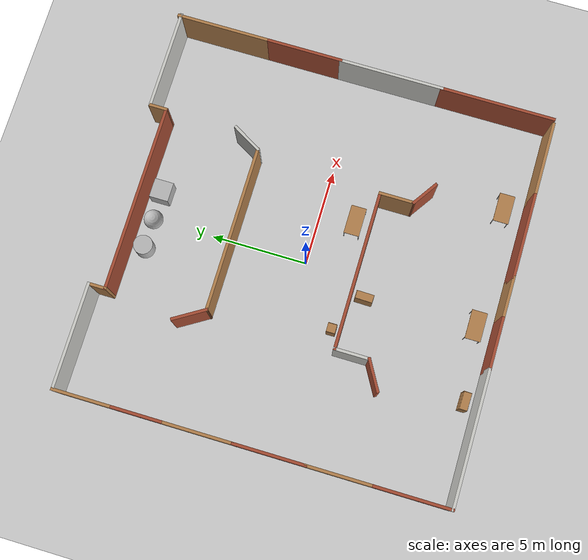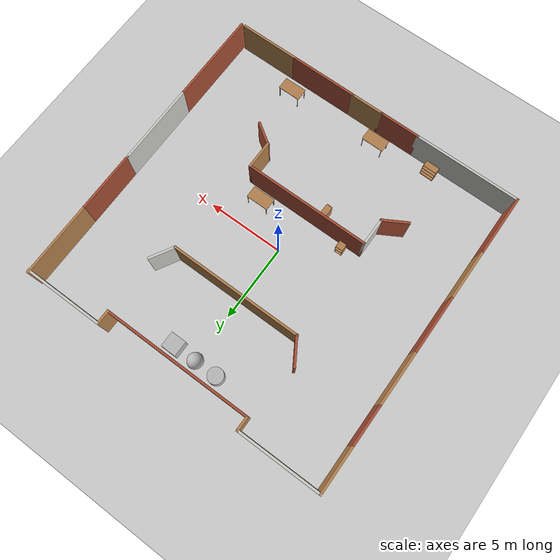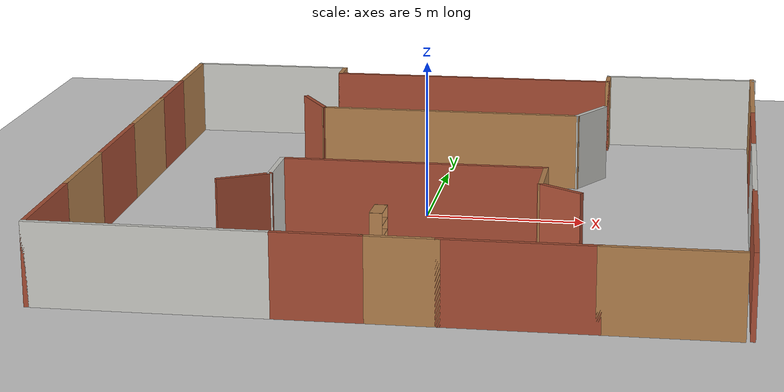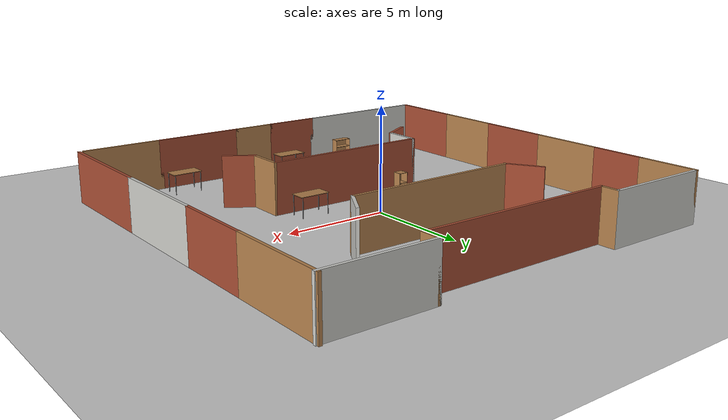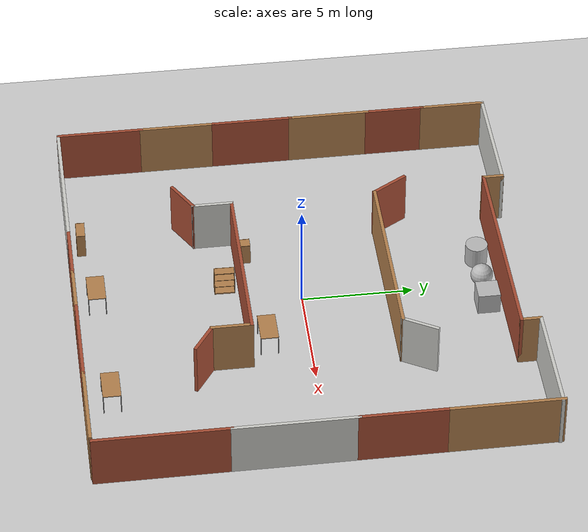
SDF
<sdf version="1.6">
 <world name="default">
  <light name="sun" type="directional">
   <pose>0 0 10 0 -0 0</pose>
   <diffuse>0.8 0.8 0.8 1</diffuse>
   <specular>0.2 0.2 0.2 1</specular>
   <attenuation>
    <range>1000</range>
    <constant>0.9</constant>
    <linear>0.01</linear>
    <quadratic>0.001</quadratic>
   </attenuation>
   <direction>-0.5 0.1 -0.9</direction>
  </light>
  <model name="ground_plane">
   <static>1</static>
   <link name="link">
    <collision name="collision">
     <geometry><plane><normal>0 0 1</normal><size>100 100</size></plane></geometry>
     <surface><friction><ode><mu>100</mu><mu2>50</mu2></ode></friction></surface>
    </collision>
    <visual name="visual">
     <cast_shadows>0</cast_shadows>
     <geometry><plane><normal>0 0 1</normal><size>100 100</size></plane></geometry>
     <material>
      <script><uri>file://media/materials/scripts/gazebo.material</uri><name>Gazebo/Grey</name></script>
     </material>
    </visual>
   </link>
  </model>
  <gravity>0 0 -9.8</gravity>
  <magnetic_field>6e-06 2.3e-05 -4.2e-05</magnetic_field>
  <atmosphere type="adiabatic"/>
  <physics name="default_physics" default="0" type="ode">
   <max_step_size>0.001</max_step_size>
   <real_time_factor>1</real_time_factor>
   <real_time_update_rate>1000</real_time_update_rate>
  </physics>
  <scene><ambient>0.4 0.4 0.4 1</ambient><background>0.7 0.7 0.7 1</background><shadows>1</shadows></scene>
  <spherical_coordinates>
   <surface_model>EARTH_WGS84</surface_model>
   <latitude_deg>0</latitude_deg>
   <longitude_deg>0</longitude_deg>
   <elevation>0</elevation>
   <heading_deg>0</heading_deg>
  </spherical_coordinates>
  <model name="rtab_space">
   <pose>0.22447 -0.11952 0 0 -0 0</pose>
   <link name="Wall_101">
    <collision name="Wall_101_Collision">
     <geometry><box><size>1 0.15 2.5</size></box></geometry>
     <pose>0 0 1.25 0 -0 0</pose>
    </collision>
    <visual name="Wall_101_Visual">
     <pose>0 0 1.25 0 -0 0</pose>
     <geometry><box><size>1 0.15 2.5</size></box></geometry>
     <material>
      <script><uri>file://media/materials/scripts/gazebo.material</uri><name>Gazebo/Wood</name></script>
      <ambient>1 1 1 1</ambient>
     </material>
     <meta><layer>0</layer></meta>
    </visual>
    <pose>-4.675 9.452 0 0 0 -1.5708</pose>
   </link>
   <link name="Wall_102">
    <collision name="Wall_102_Collision">
     <geometry><box><size>9.75 0.15 2.5</size></box></geometry>
     <pose>0 0 1.25 0 -0 0</pose>
    </collision>
    <visual name="Wall_102_Visual">
     <pose>0 0 1.25 0 -0 0</pose>
     <geometry><box><size>9.75 0.15 2.5</size></box></geometry>
     <material>
      <script><uri>file://media/materials/scripts/gazebo.material</uri><name>Gazebo/Bricks</name></script>
      <ambient>1 1 1 1</ambient>
     </material>
     <meta><layer>0</layer></meta>
    </visual>
    <pose>0.125 9.027 0 0 -0 0</pose>
   </link>
   <link name="Wall_103">
    <collision name="Wall_103_Collision">
     <geometry><box><size>1 0.15 2.5</size></box></geometry>
     <pose>0 0 1.25 0 -0 0</pose>
    </collision>
    <visual name="Wall_103_Visual">
     <pose>0 0 1.25 0 -0 0</pose>
     <geometry><box><size>1 0.15 2.5</size></box></geometry>
     <material>
      <script><uri>file://media/materials/scripts/gazebo.material</uri><name>Gazebo/Wood</name></script>
      <ambient>1 1 1 1</ambient>
     </material>
     <meta><layer>0</layer></meta>
    </visual>
    <pose>4.925 9.452 0 0 -0 1.5708</pose>
   </link>
   <link name="Wall_104">
    <collision name="Wall_104_Collision">
     <geometry><box><size>5.25 0.15 2.5</size></box></geometry>
     <pose>0 0 1.25 0 -0 0</pose>
    </collision>
    <visual name="Wall_104_Visual">
     <pose>0 0 1.25 0 -0 0</pose>
     <geometry><box><size>5.25 0.15 2.5</size></box></geometry>
     <material>
      <script><uri>file://media/materials/scripts/gazebo.material</uri><name>Gazebo/CeilingTiled</name></script>
      <ambient>1 1 1 1</ambient>
     </material>
     <meta><layer>0</layer></meta>
    </visual>
    <pose>7.475 9.877 0 0 -0 0</pose>
   </link>
   <link name="Wall_106">
    <collision name="Wall_106_Collision">
     <geometry><box><size>1.87349 0.15 2.5</size></box></geometry>
     <pose>0 0 1.25 0 -0 0</pose>
    </collision>
    <visual name="Wall_106_Visual">
     <pose>0 0 1.25 0 -0 0</pose>
     <geometry><box><size>1.87349 0.15 2.5</size></box></geometry>
     <material>
      <script><uri>file://media/materials/scripts/gazebo.material</uri><name>Gazebo/Bricks</name></script>
      <ambient>1 1 1 1</ambient>
     </material>
     <meta><layer>0</layer></meta>
    </visual>
    <pose>-4.7276 4.69632 0 0 0 -1.01783</pose>
   </link>
   <link name="Wall_107">
    <collision name="Wall_107_Collision">
     <geometry><box><size>8.65 0.15 2.5</size></box></geometry>
     <pose>0 0 1.25 0 -0 0</pose>
    </collision>
    <visual name="Wall_107_Visual">
     <pose>0 0 1.25 0 -0 0</pose>
     <geometry><box><size>8.65 0.15 2.5</size></box></geometry>
     <material>
      <script><uri>file://media/materials/scripts/gazebo.material</uri><name>Gazebo/Wood</name></script>
      <ambient>1 1 1 1</ambient>
     </material>
     <meta><layer>0</layer></meta>
    </visual>
    <pose>-0.025 3.963 0 0 -0 0</pose>
   </link>
   <link name="Wall_108">
    <collision name="Wall_108_Collision">
     <geometry><box><size>1.75 0.15 2.5</size></box></geometry>
     <pose>0 0 1.25 0 -0 0</pose>
    </collision>
    <visual name="Wall_108_Visual">
     <pose>0 0 1.25 0 -0 0</pose>
     <geometry><box><size>1.75 0.15 2.5</size></box></geometry>
     <material>
      <script><uri>file://media/materials/scripts/gazebo.material</uri><name>Gazebo/CeilingTiled</name></script>
      <ambient>1 1 1 1</ambient>
     </material>
     <meta><layer>0</layer></meta>
    </visual>
    <pose>4.625 4.65582 0 0 -0 1.0472</pose>
   </link>
   <link name="Wall_113">
    <collision name="Wall_113_Collision">
     <geometry><box><size>1.75 0.15 2.5</size></box></geometry>
     <pose>0 0 1.25 0 -0 0</pose>
    </collision>
    <visual name="Wall_113_Visual">
     <pose>0 0 1.25 0 -0 0</pose>
     <geometry><box><size>1.75 0.15 2.5</size></box></geometry>
     <material>
      <script><uri>file://media/materials/scripts/gazebo.material</uri><name>Gazebo/Bricks</name></script>
      <ambient>1 1 1 1</ambient>
     </material>
     <meta><layer>0</layer></meta>
    </visual>
    <pose>-5.02082 -4.687 0 0 -0 0.523599</pose>
   </link>
   <link name="Wall_116">
    <collision name="Wall_116_Collision">
     <geometry><box><size>1.891 0.15 2.5</size></box></geometry>
     <pose>0 0 1.25 0 -0 0</pose>
    </collision>
    <visual name="Wall_116_Visual">
     <pose>0 0 1.25 0 -0 0</pose>
     <geometry><box><size>1.891 0.15 2.5</size></box></geometry>
     <material>
      <script><uri>file://media/materials/scripts/gazebo.material</uri><name>Gazebo/CeilingTiled</name></script>
      <ambient>1 1 1 1</ambient>
     </material>
     <meta><layer>0</layer></meta>
    </visual>
    <pose>-4.328 -3.4165 0 0 -0 1.5708</pose>
   </link>
   <link name="Wall_117">
    <collision name="Wall_117_Collision">
     <geometry><box><size>8.25 0.15 2.5</size></box></geometry>
     <pose>0 0 1.25 0 -0 0</pose>
    </collision>
    <visual name="Wall_117_Visual">
     <pose>0 0 1.25 0 -0 0</pose>
     <geometry><box><size>8.25 0.15 2.5</size></box></geometry>
     <material>
      <script><uri>file://media/materials/scripts/gazebo.material</uri><name>Gazebo/Bricks</name></script>
      <ambient>1 1 1 1</ambient>
     </material>
     <meta><layer>0</layer></meta>
    </visual>
    <pose>-0.278 -2.546 0 0 -0 0</pose>
   </link>
   <link name="Wall_118">
    <collision name="Wall_118_Collision">
     <geometry><box><size>1.891 0.15 2.5</size></box></geometry>
     <pose>0 0 1.25 0 -0 0</pose>
    </collision>
    <visual name="Wall_118_Visual">
     <pose>0 0 1.25 0 -0 0</pose>
     <geometry><box><size>1.891 0.15 2.5</size></box></geometry>
     <material>
      <script><uri>file://media/materials/scripts/gazebo.material</uri><name>Gazebo/Wood</name></script>
      <ambient>1 1 1 1</ambient>
     </material>
     <meta><layer>0</layer></meta>
    </visual>
    <pose>3.772 -3.4165 0 0 0 -1.5708</pose>
   </link>
   <link name="Wall_119">
    <collision name="Wall_119_Collision">
     <geometry><box><size>1.6 0.15 2.5</size></box></geometry>
     <pose>0 0 1.25 0 -0 0</pose>
    </collision>
    <visual name="Wall_119_Visual">
     <pose>0 0 1.25 0 -0 0</pose>
     <geometry><box><size>1.6 0.15 2.5</size></box></geometry>
     <material>
      <script><uri>file://media/materials/scripts/gazebo.material</uri><name>Gazebo/Bricks</name></script>
      <ambient>1 1 1 1</ambient>
     </material>
     <meta><layer>0</layer></meta>
    </visual>
    <pose>4.374 -4.691 0 0 0 -0.591063</pose>
   </link>
   <link name="Wall_34">
    <collision name="Wall_34_Collision">
     <geometry><box><size>4 0.15 2.5</size></box></geometry>
     <pose>0 0 1.25 0 -0 0</pose>
    </collision>
    <visual name="Wall_34_Visual">
     <pose>0 0 1.25 0 -0 0</pose>
     <geometry><box><size>4 0.15 2.5</size></box></geometry>
     <material>
      <script><uri>file://media/materials/scripts/gazebo.material</uri><name>Gazebo/Bricks</name></script>
      <ambient>1 1 1 1</ambient>
     </material>
     <meta><layer>0</layer></meta>
    </visual>
    <pose>-10.025 -8.048 0 0 -0 1.5708</pose>
   </link>
   <link name="Wall_35">
    <collision name="Wall_35_Collision">
     <geometry><box><size>3.5 0.15 2.5</size></box></geometry>
     <pose>0 0 1.25 0 -0 0</pose>
    </collision>
    <visual name="Wall_35_Visual">
     <pose>0 0 1.25 0 -0 0</pose>
     <geometry><box><size>3.5 0.15 2.5</size></box></geometry>
     <material>
      <script><uri>file://media/materials/scripts/gazebo.material</uri><name>Gazebo/Wood</name></script>
      <ambient>1 1 1 1</ambient>
     </material>
     <meta><layer>0</layer></meta>
    </visual>
    <pose>-10.025 -4.448 0 0 -0 1.5708</pose>
   </link>
   <link name="Wall_36">
    <collision name="Wall_36_Collision">
     <geometry><box><size>3.75 0.15 2.5</size></box></geometry>
     <pose>0 0 1.25 0 -0 0</pose>
    </collision>
    <visual name="Wall_36_Visual">
     <pose>0 0 1.25 0 -0 0</pose>
     <geometry><box><size>3.75 0.15 2.5</size></box></geometry>
     <material>
      <script><uri>file://media/materials/scripts/gazebo.material</uri><name>Gazebo/Bricks</name></script>
      <ambient>1 1 1 1</ambient>
     </material>
     <meta><layer>0</layer></meta>
    </visual>
    <pose>-10.025 -0.973 0 0 -0 1.5708</pose>
   </link>
   <link name="Wall_37">
    <collision name="Wall_37_Collision">
     <geometry><box><size>3.75 0.15 2.5</size></box></geometry>
     <pose>0 0 1.25 0 -0 0</pose>
    </collision>
    <visual name="Wall_37_Visual">
     <pose>0 0 1.25 0 -0 0</pose>
     <geometry><box><size>3.75 0.15 2.5</size></box></geometry>
     <material>
      <script><uri>file://media/materials/scripts/gazebo.material</uri><name>Gazebo/Wood</name></script>
      <ambient>1 1 1 1</ambient>
     </material>
     <meta><layer>0</layer></meta>
    </visual>
    <pose>-10.025 2.627 0 0 -0 1.5708</pose>
   </link>
   <link name="Wall_38">
    <collision name="Wall_38_Collision">
     <geometry><box><size>2.75 0.15 2.5</size></box></geometry>
     <pose>0 0 1.25 0 -0 0</pose>
    </collision>
    <visual name="Wall_38_Visual">
     <pose>0 0 1.25 0 -0 0</pose>
     <geometry><box><size>2.75 0.15 2.5</size></box></geometry>
     <material>
      <script><uri>file://media/materials/scripts/gazebo.material</uri><name>Gazebo/Bricks</name></script>
      <ambient>1 1 1 1</ambient>
     </material>
     <meta><layer>0</layer></meta>
    </visual>
    <pose>-10.025 5.727 0 0 -0 1.5708</pose>
   </link>
   <link name="Wall_39">
    <collision name="Wall_39_Collision">
     <geometry><box><size>3 0.15 2.5</size></box></geometry>
     <pose>0 0 1.25 0 -0 0</pose>
    </collision>
    <visual name="Wall_39_Visual">
     <pose>0 0 1.25 0 -0 0</pose>
     <geometry><box><size>3 0.15 2.5</size></box></geometry>
     <material>
      <script><uri>file://media/materials/scripts/gazebo.material</uri><name>Gazebo/Wood</name></script>
      <ambient>1 1 1 1</ambient>
     </material>
     <meta><layer>0</layer></meta>
    </visual>
    <pose>-10.025 8.452 0 0 -0 1.5708</pose>
   </link>
   <link name="Wall_41">
    <collision name="Wall_41_Collision">
     <geometry><box><size>6 0.15 2.5</size></box></geometry>
     <pose>0 0 1.25 0 -0 0</pose>
    </collision>
    <visual name="Wall_41_Visual">
     <pose>0 0 1.25 0 -0 0</pose>
     <geometry><box><size>6 0.15 2.5</size></box></geometry>
     <material>
      <script><uri>file://media/materials/scripts/gazebo.material</uri><name>Gazebo/Bricks</name></script>
      <ambient>1 1 1 1</ambient>
     </material>
     <meta><layer>0</layer></meta>
    </visual>
    <pose>9.975 -7.002 0 0 -0 1.5708</pose>
   </link>
   <link name="Wall_42">
    <collision name="Wall_42_Collision">
     <geometry><box><size>5.5 0.15 2.5</size></box></geometry>
     <pose>0 0 1.25 0 -0 0</pose>
    </collision>
    <visual name="Wall_42_Visual">
     <pose>0 0 1.25 0 -0 0</pose>
     <geometry><box><size>5.5 0.15 2.5</size></box></geometry>
     <material>
      <script><uri>file://media/materials/scripts/gazebo.material</uri><name>Gazebo/CeilingTiled</name></script>
      <ambient>1 1 1 1</ambient>
     </material>
     <meta><layer>0</layer></meta>
    </visual>
    <pose>9.975 -1.402 0 0 -0 1.5708</pose>
   </link>
   <link name="Wall_43">
    <collision name="Wall_43_Collision">
     <geometry><box><size>4 0.15 2.5</size></box></geometry>
     <pose>0 0 1.25 0 -0 0</pose>
    </collision>
    <visual name="Wall_43_Visual">
     <pose>0 0 1.25 0 -0 0</pose>
     <geometry><box><size>4 0.15 2.5</size></box></geometry>
     <material>
      <script><uri>file://media/materials/scripts/gazebo.material</uri><name>Gazebo/Bricks</name></script>
      <ambient>1 1 1 1</ambient>
     </material>
     <meta><layer>0</layer></meta>
    </visual>
    <pose>9.975 3.198 0 0 -0 1.5708</pose>
   </link>
   <link name="Wall_44">
    <collision name="Wall_44_Collision">
     <geometry><box><size>5 0.15 2.5</size></box></geometry>
     <pose>0 0 1.25 0 -0 0</pose>
    </collision>
    <visual name="Wall_44_Visual">
     <pose>0 0 1.25 0 -0 0</pose>
     <geometry><box><size>5 0.15 2.5</size></box></geometry>
     <material>
      <script><uri>file://media/materials/scripts/gazebo.material</uri><name>Gazebo/Wood</name></script>
      <ambient>1 1 1 1</ambient>
     </material>
     <meta><layer>0</layer></meta>
    </visual>
    <pose>9.975 7.548 0 0 -0 1.5708</pose>
   </link>
   <link name="Wall_46">
    <collision name="Wall_46_Collision">
     <geometry><box><size>7 0.15 2.5</size></box></geometry>
     <pose>0 0 1.25 0 -0 0</pose>
    </collision>
    <visual name="Wall_46_Visual">
     <pose>0 0 1.25 0 -0 0</pose>
     <geometry><box><size>7 0.15 2.5</size></box></geometry>
     <material>
      <script><uri>file://media/materials/scripts/gazebo.material</uri><name>Gazebo/CeilingTiled</name></script>
      <ambient>1 1 1 1</ambient>
     </material>
     <meta><layer>0</layer></meta>
    </visual>
    <pose>-6.6 -9.973 0 0 -0 0</pose>
   </link>
   <link name="Wall_47">
    <collision name="Wall_47_Collision">
     <geometry><box><size>2.75 0.15 2.5</size></box></geometry>
     <pose>0 0 1.25 0 -0 0</pose>
    </collision>
    <visual name="Wall_47_Visual">
     <pose>0 0 1.25 0 -0 0</pose>
     <geometry><box><size>2.75 0.15 2.5</size></box></geometry>
     <material>
      <script><uri>file://media/materials/scripts/gazebo.material</uri><name>Gazebo/Bricks</name></script>
      <ambient>1 1 1 1</ambient>
     </material>
     <meta><layer>0</layer></meta>
    </visual>
    <pose>-1.875 -9.973 0 0 -0 0</pose>
   </link>
   <link name="Wall_48">
    <collision name="Wall_48_Collision">
     <geometry><box><size>2.25 0.15 2.5</size></box></geometry>
     <pose>0 0 1.25 0 -0 0</pose>
    </collision>
    <visual name="Wall_48_Visual">
     <pose>0 0 1.25 0 -0 0</pose>
     <geometry><box><size>2.25 0.15 2.5</size></box></geometry>
     <material>
      <script><uri>file://media/materials/scripts/gazebo.material</uri><name>Gazebo/Wood</name></script>
      <ambient>1 1 1 1</ambient>
     </material>
     <meta><layer>0</layer></meta>
    </visual>
    <pose>0.475 -9.973 0 0 -0 0</pose>
   </link>
   <link name="Wall_49">
    <collision name="Wall_49_Collision">
     <geometry><box><size>4.5 0.15 2.5</size></box></geometry>
     <pose>0 0 1.25 0 -0 0</pose>
    </collision>
    <visual name="Wall_49_Visual">
     <pose>0 0 1.25 0 -0 0</pose>
     <geometry><box><size>4.5 0.15 2.5</size></box></geometry>
     <material>
      <script><uri>file://media/materials/scripts/gazebo.material</uri><name>Gazebo/Bricks</name></script>
      <ambient>1 1 1 1</ambient>
     </material>
     <meta><layer>0</layer></meta>
    </visual>
    <pose>3.7 -9.973 0 0 -0 0</pose>
   </link>
   <link name="Wall_50">
    <collision name="Wall_50_Collision">
     <geometry><box><size>4 0.15 2.5</size></box></geometry>
     <pose>0 0 1.25 0 -0 0</pose>
    </collision>
    <visual name="Wall_50_Visual">
     <pose>0 0 1.25 0 -0 0</pose>
     <geometry><box><size>4 0.15 2.5</size></box></geometry>
     <material>
      <script><uri>file://media/materials/scripts/gazebo.material</uri><name>Gazebo/Wood</name></script>
      <ambient>1 1 1 1</ambient>
     </material>
     <meta><layer>0</layer></meta>
    </visual>
    <pose>7.8 -9.973 0 0 -0 0</pose>
   </link>
   <link name="Wall_99">
    <collision name="Wall_99_Collision">
     <geometry><box><size>5.5 0.15 2.5</size></box></geometry>
     <pose>0 0 1.25 0 -0 0</pose>
    </collision>
    <visual name="Wall_99_Visual">
     <pose>0 0 1.25 0 -0 0</pose>
     <geometry><box><size>5.5 0.15 2.5</size></box></geometry>
     <material>
      <script><uri>file://media/materials/scripts/gazebo.material</uri><name>Gazebo/CeilingTiled</name></script>
      <ambient>1 1 1 1</ambient>
     </material>
     <meta><layer>0</layer></meta>
    </visual>
    <pose>-7.35 9.877 0 0 -0 0</pose>
   </link>
   <static>1</static>
  </model>
  <model name="table">
   <static>1</static>
   <link name="link">
    <collision name="surface">
     <pose>0 0 1 0 -0 0</pose>
     <geometry><box><size>1.5 0.8 0.03</size></box></geometry>
     <surface><friction><ode><mu>0.6</mu><mu2>0.6</mu2></ode></friction></surface>
    </collision>
    <visual name="visual1">
     <pose>0 0 1 0 -0 0</pose>
     <geometry><box><size>1.5 0.8 0.03</size></box></geometry>
     <material>
      <script><uri>file://media/materials/scripts/gazebo.material</uri><name>Gazebo/Wood</name></script>
     </material>
    </visual>
    <collision name="front_left_leg">
     <pose>0.68 0.38 0.5 0 -0 0</pose>
     <geometry><cylinder><radius>0.02</radius><length>1</length></cylinder></geometry>
    </collision>
    <visual name="front_left_leg">
     <pose>0.68 0.38 0.5 0 -0 0</pose>
     <geometry><cylinder><radius>0.02</radius><length>1</length></cylinder></geometry>
     <material>
      <script><uri>file://media/materials/scripts/gazebo.material</uri><name>Gazebo/Grey</name></script>
     </material>
    </visual>
    <collision name="front_right_leg">
     <pose>0.68 -0.38 0.5 0 -0 0</pose>
     <geometry><cylinder><radius>0.02</radius><length>1</length></cylinder></geometry>
    </collision>
    <visual name="front_right_leg">
     <pose>0.68 -0.38 0.5 0 -0 0</pose>
     <geometry><cylinder><radius>0.02</radius><length>1</length></cylinder></geometry>
     <material>
      <script><uri>file://media/materials/scripts/gazebo.material</uri><name>Gazebo/Grey</name></script>
     </material>
    </visual>
    <collision name="back_right_leg">
     <pose>-0.68 -0.38 0.5 0 -0 0</pose>
     <geometry><cylinder><radius>0.02</radius><length>1</length></cylinder></geometry>
    </collision>
    <visual name="back_right_leg">
     <pose>-0.68 -0.38 0.5 0 -0 0</pose>
     <geometry><cylinder><radius>0.02</radius><length>1</length></cylinder></geometry>
     <material>
      <script><uri>file://media/materials/scripts/gazebo.material</uri><name>Gazebo/Grey</name></script>
     </material>
    </visual>
    <collision name="back_left_leg">
     <pose>-0.68 0.38 0.5 0 -0 0</pose>
     <geometry><cylinder><radius>0.02</radius><length>1</length></cylinder></geometry>
    </collision>
    <visual name="back_left_leg">
     <pose>-0.68 0.38 0.5 0 -0 0</pose>
     <geometry><cylinder><radius>0.02</radius><length>1</length></cylinder></geometry>
     <material>
      <script><uri>file://media/materials/scripts/gazebo.material</uri><name>Gazebo/Grey</name></script>
     </material>
    </visual>
   </link>
   <pose>2.64952 -1.82603 0 0 -0 0</pose>
  </model>
  <model name="bookshelf">
   <static>1</static>
   <link name="link">
    <inertial><mass>1</mass></inertial>
    <collision name="back">
     <pose>0 0.005 0.6 0 -0 0</pose>
     <geometry><box><size>0.9 0.01 1.2</size></box></geometry>
    </collision>
    <visual name="visual1">
     <pose>0 0.005 0.6 0 -0 0</pose>
     <geometry><box><size>0.9 0.01 1.2</size></box></geometry>
     <material>
      <script><uri>file://media/materials/scripts/gazebo.material</uri><name>Gazebo/Wood</name></script>
     </material>
    </visual>
    <collision name="left_side">
     <pose>0.45 -0.195 0.6 0 -0 0</pose>
     <geometry><box><size>0.02 0.4 1.2</size></box></geometry>
    </collision>
    <visual name="visual2">
     <pose>0.45 -0.195 0.6 0 -0 0</pose>
     <geometry><box><size>0.02 0.4 1.2</size></box></geometry>
     <material>
      <script><uri>file://media/materials/scripts/gazebo.material</uri><name>Gazebo/Wood</name></script>
     </material>
    </visual>
    <collision name="right_side">
     <pose>-0.45 -0.195 0.6 0 -0 0</pose>
     <geometry><box><size>0.02 0.4 1.2</size></box></geometry>
    </collision>
    <visual name="visual3">
     <pose>-0.45 -0.195 0.6 0 -0 0</pose>
     <geometry><box><size>0.02 0.4 1.2</size></box></geometry>
     <material>
      <script><uri>file://media/materials/scripts/gazebo.material</uri><name>Gazebo/Wood</name></script>
     </material>
    </visual>
    <collision name="bottom">
     <pose>0 -0.195 0.03 0 -0 0</pose>
     <geometry><box><size>0.88 0.4 0.06</size></box></geometry>
    </collision>
    <visual name="visual4">
     <pose>0 -0.195 0.03 0 -0 0</pose>
     <geometry><box><size>0.88 0.4 0.06</size></box></geometry>
     <material>
      <script><uri>file://media/materials/scripts/gazebo.material</uri><name>Gazebo/Wood</name></script>
     </material>
    </visual>
    <collision name="top">
     <pose>0 -0.195 1.19 0 -0 0</pose>
     <geometry><box><size>0.88 0.4 0.02</size></box></geometry>
    </collision>
    <visual name="visual5">
     <pose>0 -0.195 1.19 0 -0 0</pose>
     <geometry><box><size>0.88 0.4 0.02</size></box></geometry>
     <material>
      <script><uri>file://media/materials/scripts/gazebo.material</uri><name>Gazebo/Wood</name></script>
     </material>
    </visual>
    <collision name="low_shelf">
     <pose>0 -0.195 0.43 0 -0 0</pose>
     <geometry><box><size>0.88 0.4 0.02</size></box></geometry>
    </collision>
    <visual name="visual6">
     <pose>0 -0.195 0.43 0 -0 0</pose>
     <geometry><box><size>0.88 0.4 0.02</size></box></geometry>
     <material>
      <script><uri>file://media/materials/scripts/gazebo.material</uri><name>Gazebo/Wood</name></script>
     </material>
    </visual>
    <collision name="high_shelf">
     <pose>0 -0.195 0.8 0 -0 0</pose>
     <geometry><box><size>0.88 0.4 0.02</size></box></geometry>
    </collision>
    <visual name="visual7">
     <pose>0 -0.195 0.8 0 -0 0</pose>
     <geometry><box><size>0.88 0.4 0.02</size></box></geometry>
     <material>
      <script><uri>file://media/materials/scripts/gazebo.material</uri><name>Gazebo/Wood</name></script>
     </material>
    </visual>
   </link>
   <pose>-1.20458 -3.3514 0 0 -0 1.55133</pose>
  </model>
  <model name="bookshelf_clone">
   <static>1</static>
   <link name="link">
    <inertial><mass>1</mass></inertial>
    <collision name="back">
     <pose>0 0.005 0.6 0 -0 0</pose>
     <geometry><box><size>0.9 0.01 1.2</size></box></geometry>
    </collision>
    <visual name="visual1">
     <pose>0 0.005 0.6 0 -0 0</pose>
     <geometry><box><size>0.9 0.01 1.2</size></box></geometry>
     <material>
      <script><uri>file://media/materials/scripts/gazebo.material</uri><name>Gazebo/Wood</name></script>
     </material>
    </visual>
    <collision name="left_side">
     <pose>0.45 -0.195 0.6 0 -0 0</pose>
     <geometry><box><size>0.02 0.4 1.2</size></box></geometry>
    </collision>
    <visual name="visual2">
     <pose>0.45 -0.195 0.6 0 -0 0</pose>
     <geometry><box><size>0.02 0.4 1.2</size></box></geometry>
     <material>
      <script><uri>file://media/materials/scripts/gazebo.material</uri><name>Gazebo/Wood</name></script>
     </material>
    </visual>
    <collision name="right_side">
     <pose>-0.45 -0.195 0.6 0 -0 0</pose>
     <geometry><box><size>0.02 0.4 1.2</size></box></geometry>
    </collision>
    <visual name="visual3">
     <pose>-0.45 -0.195 0.6 0 -0 0</pose>
     <geometry><box><size>0.02 0.4 1.2</size></box></geometry>
     <material>
      <script><uri>file://media/materials/scripts/gazebo.material</uri><name>Gazebo/Wood</name></script>
     </material>
    </visual>
    <collision name="bottom">
     <pose>0 -0.195 0.03 0 -0 0</pose>
     <geometry><box><size>0.88 0.4 0.06</size></box></geometry>
    </collision>
    <visual name="visual4">
     <pose>0 -0.195 0.03 0 -0 0</pose>
     <geometry><box><size>0.88 0.4 0.06</size></box></geometry>
     <material>
      <script><uri>file://media/materials/scripts/gazebo.material</uri><name>Gazebo/Wood</name></script>
     </material>
    </visual>
    <collision name="top">
     <pose>0 -0.195 1.19 0 -0 0</pose>
     <geometry><box><size>0.88 0.4 0.02</size></box></geometry>
    </collision>
    <visual name="visual5">
     <pose>0 -0.195 1.19 0 -0 0</pose>
     <geometry><box><size>0.88 0.4 0.02</size></box></geometry>
     <material>
      <script><uri>file://media/materials/scripts/gazebo.material</uri><name>Gazebo/Wood</name></script>
     </material>
    </visual>
    <collision name="low_shelf">
     <pose>0 -0.195 0.43 0 -0 0</pose>
     <geometry><box><size>0.88 0.4 0.02</size></box></geometry>
    </collision>
    <visual name="visual6">
     <pose>0 -0.195 0.43 0 -0 0</pose>
     <geometry><box><size>0.88 0.4 0.02</size></box></geometry>
     <material>
      <script><uri>file://media/materials/scripts/gazebo.material</uri><name>Gazebo/Wood</name></script>
     </material>
    </visual>
    <collision name="high_shelf">
     <pose>0 -0.195 0.8 0 -0 0</pose>
     <geometry><box><size>0.88 0.4 0.02</size></box></geometry>
    </collision>
    <visual name="visual7">
     <pose>0 -0.195 0.8 0 -0 0</pose>
     <geometry><box><size>0.88 0.4 0.02</size></box></geometry>
     <material>
      <script><uri>file://media/materials/scripts/gazebo.material</uri><name>Gazebo/Wood</name></script>
     </material>
    </visual>
   </link>
   <pose>-4.59998 -9.70897 0 0 -0 3.12275</pose>
  </model>
  <model name="cabinet">
   <static>1</static>
   <link name="cabinet_bottom_plate">
    <inertial>
     <pose>0 0 -1 0 -0 0</pose>
     <inertia><ixx>2.05</ixx><ixy>0</ixy><ixz>0</ixz><iyy>2.05</iyy><iyz>0</iyz><izz>2.05</izz></inertia>
     <mass>25</mass>
    </inertial>
    <collision name="cabinet_bottom_plate_geom">
     <pose>0 0 0.01 0 -0 0</pose>
     <geometry><box><size>0.45 0.45 0.02</size></box></geometry>
    </collision>
    <visual name="cabinet_bottom_plate_geom_visual">
     <pose>0 0 0.01 0 -0 0</pose>
     <geometry><box><size>0.45 0.45 0.02</size></box></geometry>
     <material>
      <script><uri>file://media/materials/scripts/gazebo.material</uri><name>Gazebo/Wood</name></script>
     </material>
    </visual>
    <collision name="cabinet_bottom_plate_geom_cabinet_back_plate">
     <pose>0.235 0 0.51 0 -0 0</pose>
     <geometry><box><size>0.02 0.45 1.02</size></box></geometry>
    </collision>
    <visual name="cabinet_bottom_plate_geom_cabinet_back_plate_visual">
     <pose>0.235 0 0.51 0 -0 0</pose>
     <geometry><box><size>0.02 0.45 1.02</size></box></geometry>
     <material>
      <script><uri>file://media/materials/scripts/gazebo.material</uri><name>Gazebo/Wood</name></script>
     </material>
    </visual>
    <collision name="cabinet_bottom_plate_geom_cabinet_left_plate">
     <pose>0 0.235 0.51 0 -0 0</pose>
     <geometry><box><size>0.45 0.02 1.02</size></box></geometry>
    </collision>
    <visual name="cabinet_bottom_plate_geom_cabinet_left_plate_visual">
     <pose>0 0.235 0.51 0 -0 0</pose>
     <geometry><box><size>0.45 0.02 1.02</size></box></geometry>
     <material>
      <script><uri>file://media/materials/scripts/gazebo.material</uri><name>Gazebo/Wood</name></script>
     </material>
    </visual>
    <collision name="cabinet_bottom_plate_geom_cabinet_middle_plate">
     <pose>0 0 0.51 0 -0 0</pose>
     <geometry><box><size>0.45 0.45 0.02</size></box></geometry>
    </collision>
    <visual name="cabinet_bottom_plate_geom_cabinet_middle_plate_visual">
     <pose>0 0 0.51 0 -0 0</pose>
     <geometry><box><size>0.45 0.45 0.02</size></box></geometry>
     <material>
      <script><uri>file://media/materials/scripts/gazebo.material</uri><name>Gazebo/Wood</name></script>
     </material>
    </visual>
    <collision name="cabinet_bottom_plate_geom_cabinet_right_plate">
     <pose>0 -0.235 0.51 0 -0 0</pose>
     <geometry><box><size>0.45 0.02 1.02</size></box></geometry>
    </collision>
    <visual name="cabinet_bottom_plate_geom_cabinet_right_plate_visual">
     <pose>0 -0.235 0.51 0 -0 0</pose>
     <geometry><box><size>0.45 0.02 1.02</size></box></geometry>
     <material>
      <script><uri>file://media/materials/scripts/gazebo.material</uri><name>Gazebo/Wood</name></script>
     </material>
    </visual>
    <collision name="cabinet_bottom_plate_geom_cabinet_top_plate">
     <pose>0 0 1.01 0 -0 0</pose>
     <geometry><box><size>0.45 0.45 0.02</size></box></geometry>
    </collision>
    <visual name="cabinet_bottom_plate_geom_cabinet_top_plate_visual">
     <pose>0 0 1.01 0 -0 0</pose>
     <geometry><box><size>0.45 0.45 0.02</size></box></geometry>
     <material>
      <script><uri>file://media/materials/scripts/gazebo.material</uri><name>Gazebo/Wood</name></script>
     </material>
    </visual>
   </link>
   <pose>-2.97781 -2.20992 0 0 0 -1.56579</pose>
  </model>
  <model name="table_0">
   <static>1</static>
   <link name="link">
    <collision name="surface">
     <pose>0 0 1 0 -0 0</pose>
     <geometry><box><size>1.5 0.8 0.03</size></box></geometry>
     <surface><friction><ode><mu>0.6</mu><mu2>0.6</mu2></ode></friction></surface>
    </collision>
    <visual name="visual1">
     <pose>0 0 1 0 -0 0</pose>
     <geometry><box><size>1.5 0.8 0.03</size></box></geometry>
     <material>
      <script><uri>file://media/materials/scripts/gazebo.material</uri><name>Gazebo/Wood</name></script>
     </material>
    </visual>
    <collision name="front_left_leg">
     <pose>0.68 0.38 0.5 0 -0 0</pose>
     <geometry><cylinder><radius>0.02</radius><length>1</length></cylinder></geometry>
    </collision>
    <visual name="front_left_leg">
     <pose>0.68 0.38 0.5 0 -0 0</pose>
     <geometry><cylinder><radius>0.02</radius><length>1</length></cylinder></geometry>
     <material>
      <script><uri>file://media/materials/scripts/gazebo.material</uri><name>Gazebo/Grey</name></script>
     </material>
    </visual>
    <collision name="front_right_leg">
     <pose>0.68 -0.38 0.5 0 -0 0</pose>
     <geometry><cylinder><radius>0.02</radius><length>1</length></cylinder></geometry>
    </collision>
    <visual name="front_right_leg">
     <pose>0.68 -0.38 0.5 0 -0 0</pose>
     <geometry><cylinder><radius>0.02</radius><length>1</length></cylinder></geometry>
     <material>
      <script><uri>file://media/materials/scripts/gazebo.material</uri><name>Gazebo/Grey</name></script>
     </material>
    </visual>
    <collision name="back_right_leg">
     <pose>-0.68 -0.38 0.5 0 -0 0</pose>
     <geometry><cylinder><radius>0.02</radius><length>1</length></cylinder></geometry>
    </collision>
    <visual name="back_right_leg">
     <pose>-0.68 -0.38 0.5 0 -0 0</pose>
     <geometry><cylinder><radius>0.02</radius><length>1</length></cylinder></geometry>
     <material>
      <script><uri>file://media/materials/scripts/gazebo.material</uri><name>Gazebo/Grey</name></script>
     </material>
    </visual>
    <collision name="back_left_leg">
     <pose>-0.68 0.38 0.5 0 -0 0</pose>
     <geometry><cylinder><radius>0.02</radius><length>1</length></cylinder></geometry>
    </collision>
    <visual name="back_left_leg">
     <pose>-0.68 0.38 0.5 0 -0 0</pose>
     <geometry><cylinder><radius>0.02</radius><length>1</length></cylinder></geometry>
     <material>
      <script><uri>file://media/materials/scripts/gazebo.material</uri><name>Gazebo/Grey</name></script>
     </material>
    </visual>
   </link>
   <pose>-0.81776 -9.09587 0 0 -0 0</pose>
  </model>
  <model name="table_0_clone">
   <static>1</static>
   <link name="link">
    <collision name="surface">
     <pose>0 0 1 0 -0 0</pose>
     <geometry><box><size>1.5 0.8 0.03</size></box></geometry>
     <surface><friction><ode><mu>0.6</mu><mu2>0.6</mu2></ode></friction></surface>
    </collision>
    <visual name="visual1">
     <pose>0 0 1 0 -0 0</pose>
     <geometry><box><size>1.5 0.8 0.03</size></box></geometry>
     <material>
      <script><uri>file://media/materials/scripts/gazebo.material</uri><name>Gazebo/Wood</name></script>
     </material>
    </visual>
    <collision name="front_left_leg">
     <pose>0.68 0.38 0.5 0 -0 0</pose>
     <geometry><cylinder><radius>0.02</radius><length>1</length></cylinder></geometry>
    </collision>
    <visual name="front_left_leg">
     <pose>0.68 0.38 0.5 0 -0 0</pose>
     <geometry><cylinder><radius>0.02</radius><length>1</length></cylinder></geometry>
     <material>
      <script><uri>file://media/materials/scripts/gazebo.material</uri><name>Gazebo/Grey</name></script>
     </material>
    </visual>
    <collision name="front_right_leg">
     <pose>0.68 -0.38 0.5 0 -0 0</pose>
     <geometry><cylinder><radius>0.02</radius><length>1</length></cylinder></geometry>
    </collision>
    <visual name="front_right_leg">
     <pose>0.68 -0.38 0.5 0 -0 0</pose>
     <geometry><cylinder><radius>0.02</radius><length>1</length></cylinder></geometry>
     <material>
      <script><uri>file://media/materials/scripts/gazebo.material</uri><name>Gazebo/Grey</name></script>
     </material>
    </visual>
    <collision name="back_right_leg">
     <pose>-0.68 -0.38 0.5 0 -0 0</pose>
     <geometry><cylinder><radius>0.02</radius><length>1</length></cylinder></geometry>
    </collision>
    <visual name="back_right_leg">
     <pose>-0.68 -0.38 0.5 0 -0 0</pose>
     <geometry><cylinder><radius>0.02</radius><length>1</length></cylinder></geometry>
     <material>
      <script><uri>file://media/materials/scripts/gazebo.material</uri><name>Gazebo/Grey</name></script>
     </material>
    </visual>
    <collision name="back_left_leg">
     <pose>-0.68 0.38 0.5 0 -0 0</pose>
     <geometry><cylinder><radius>0.02</radius><length>1</length></cylinder></geometry>
    </collision>
    <visual name="back_left_leg">
     <pose>-0.68 0.38 0.5 0 -0 0</pose>
     <geometry><cylinder><radius>0.02</radius><length>1</length></cylinder></geometry>
     <material>
      <script><uri>file://media/materials/scripts/gazebo.material</uri><name>Gazebo/Grey</name></script>
     </material>
    </visual>
   </link>
   <pose>5.42314 -8.93759 0 0 -0 0</pose>
  </model>
  <model name="textured_shapes">
   <pose>-0.095342 8.14858 0.5 0 -0 1.56948</pose>
   <link name="box">
    <pose>0 -1.5 0 0 -0 0</pose>
    <collision name="collision"><geometry><box><size>1 1 1</size></box></geometry></collision>
    <visual name="visual">
     <geometry><box><size>1 1 1</size></box></geometry>
     <material>
      <script>
       <uri>model://textured_shapes/materials/scripts</uri>
       <uri>model://textured_shapes/materials/textures</uri>
       <name>TexturedShape/Squares</name>
      </script>
     </material>
    </visual>
    <inertial>
     <inertia><ixx>1</ixx><ixy>0</ixy><ixz>0</ixz><iyy>1</iyy><iyz>0</iyz><izz>1</izz></inertia>
     <mass>1</mass>
    </inertial>
   </link>
   <link name="sphere">
    <collision name="collision"><geometry><sphere><radius>0.5</radius></sphere></geometry></collision>
    <visual name="visual">
     <geometry><sphere><radius>0.5</radius></sphere></geometry>
     <material>
      <script>
       <uri>model://textured_shapes/materials/scripts</uri>
       <uri>model://textured_shapes/materials/textures</uri>
       <name>TexturedShape/Squares</name>
      </script>
     </material>
    </visual>
    <inertial>
     <inertia><ixx>1</ixx><ixy>0</ixy><ixz>0</ixz><iyy>1</iyy><iyz>0</iyz><izz>1</izz></inertia>
     <mass>1</mass>
    </inertial>
   </link>
   <link name="cylinder">
    <pose>0 1.5 0 0 -0 0</pose>
    <collision name="collision">
     <geometry><cylinder><radius>0.5</radius><length>1</length></cylinder></geometry>
    </collision>
    <visual name="visual">
     <geometry><cylinder><radius>0.5</radius><length>1</length></cylinder></geometry>
     <material>
      <script>
       <uri>model://textured_shapes/materials/scripts</uri>
       <uri>model://textured_shapes/materials/textures</uri>
       <name>TexturedShape/Squares</name>
      </script>
     </material>
    </visual>
    <inertial>
     <inertia><ixx>1</ixx><ixy>0</ixy><ixz>0</ixz><iyy>1</iyy><iyz>0</iyz><izz>1</izz></inertia>
     <mass>1</mass>
    </inertial>
   </link>
  </model>
 </world>
</sdf>
